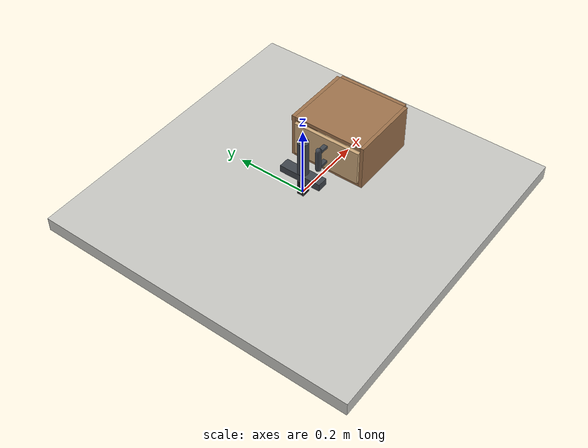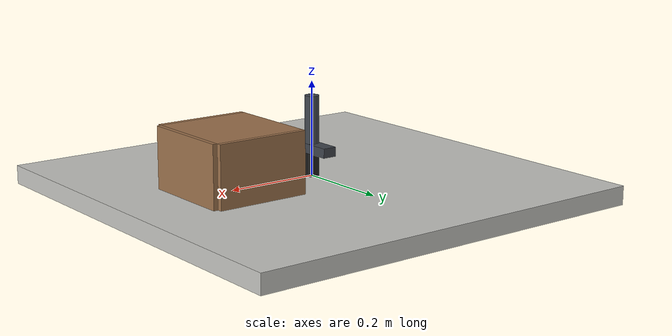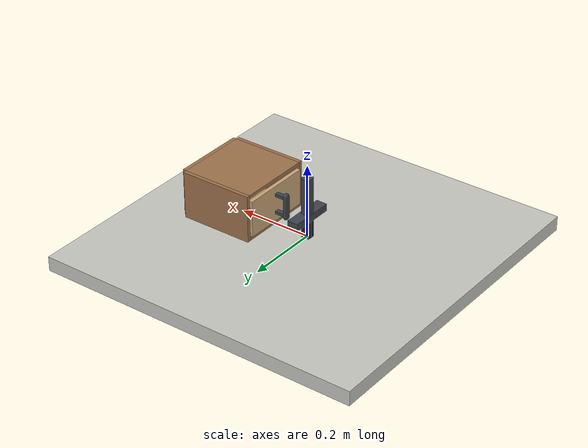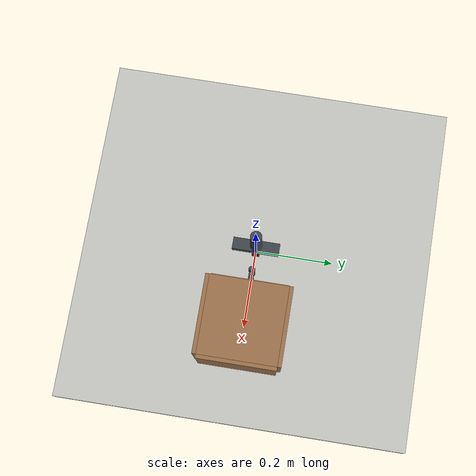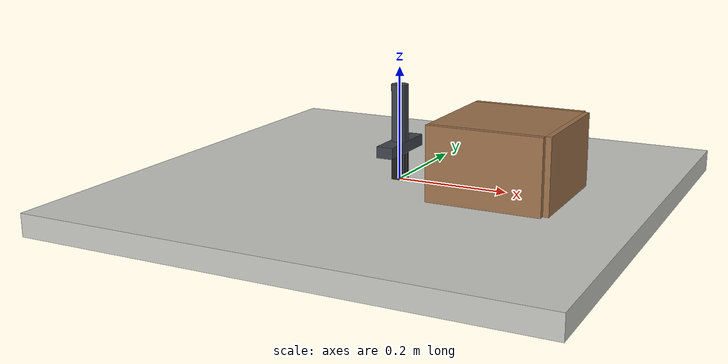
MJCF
<!--
  Drawer: pull a drawer out of a fixed cabinet by its vertical handle.
  The cabinet opens toward -x; the drawer joint measures how far it is open.
-->
<mujoco model="drawer">
  <include file="common.xml"/>
  <asset>
    <material name="wood" rgba="0.62 0.45 0.30 1"/>
    <material name="drawer" rgba="0.80 0.66 0.48 1"/>
  </asset>
  <worldbody>
    <body name="cabinet" pos="0.2 0 0">
      <geom name="cab_bottom" type="box" size="0.1 0.1 0.005" pos="0 0 0.005" material="wood"/>
      <geom name="cab_top" type="box" size="0.1 0.1 0.005" pos="0 0 0.125" material="wood"/>
      <geom name="cab_left" type="box" size="0.1 0.005 0.065" pos="0 0.105 0.065" material="wood"/>
      <geom name="cab_right" type="box" size="0.1 0.005 0.065" pos="0 -0.105 0.065" material="wood"/>
      <geom name="cab_back" type="box" size="0.005 0.1 0.065" pos="0.105 0 0.065" material="wood"/>
      <body name="drawer" pos="0 0 0.012">
        <joint name="drawer" type="slide" axis="-1 0 0" range="0 0.18" damping="2" frictionloss="0.3"/>
        <geom name="drawer_bottom" type="box" size="0.095 0.095 0.003" pos="0 0 0.003" material="drawer"
              mass="0.2"/>
        <geom name="drawer_front" type="box" size="0.005 0.098 0.05" pos="-0.1 0 0.05" material="drawer"
              mass="0.1"/>
        <geom name="drawer_back" type="box" size="0.004 0.09 0.03" pos="0.09 0 0.03" material="drawer"
              mass="0.05"/>
        <geom name="standoff_top" type="box" size="0.02 0.006 0.004" pos="-0.12 0 0.075"
              material="gripper" mass="0.01"/>
        <geom name="standoff_bottom" type="box" size="0.02 0.006 0.004" pos="-0.12 0 0.025"
              material="gripper" mass="0.01"/>
        <geom name="handle" type="capsule" size="0.008 0.03" pos="-0.135 0 0.05" material="gripper"
              mass="0.02"/>
        <site name="handle" pos="-0.135 0 0.05" size="0.005" rgba="1 1 0 0"/>
      </body>
    </body>
  </worldbody>
</mujoco>

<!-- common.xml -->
<mujoco>
  <compiler angle="radian" autolimits="true"/>
  <option timestep="0.002" cone="elliptic" impratio="10" integrator="implicitfast"/>
  <size memory="8M"/>

  <visual>
    <global offwidth="640" offheight="480"/>
    <headlight ambient="0.35 0.35 0.35" diffuse="0.5 0.5 0.5" specular="0.1 0.1 0.1"/>
    <quality shadowsize="2048"/>
  </visual>

  <asset>
    <texture name="grid" type="2d" builtin="checker" rgb1="0.82 0.82 0.80" rgb2="0.74 0.74 0.72"
             width="256" height="256"/>
    <texture name="sky" type="skybox" builtin="gradient" rgb1="0.55 0.62 0.72" rgb2="0.12 0.14 0.18"
             width="256" height="256"/>
    <material name="table" texture="grid" texrepeat="6 6" reflectance="0.05"/>
    <material name="gripper" rgba="0.25 0.27 0.30 1"/>
    <material name="pad" rgba="0.12 0.12 0.12 1"/>
    <material name="goal" rgba="0.15 0.75 0.25 0.35"/>
  </asset>

  <default>
    <geom friction="1.0 0.005 0.0001" solref="0.01 1" solimp="0.95 0.99 0.001"/>
    <default class="visual">
      <geom contype="0" conaffinity="0" group="1"/>
    </default>
  </default>

  <worldbody>
    <light name="key" pos="0.4 -0.4 1.2" dir="-0.3 0.3 -1" diffuse="0.6 0.6 0.6" castshadow="true"/>
    <light name="fill" pos="-0.5 0.3 1.0" dir="0.4 -0.2 -1" diffuse="0.25 0.25 0.25" castshadow="false"/>
    <geom name="table" type="box" size="0.45 0.45 0.02" pos="0 0 -0.02" material="table"/>
    <camera name="front" pos="0.0 -0.62 0.5" xyaxes="1 0 0 0 0.587 0.81" fovy="42"/>
    <camera name="top" pos="0 0 1.1" xyaxes="1 0 0 0 1 0" fovy="45"/>

    <body name="ee" pos="0 0 0" gravcomp="1">
      <joint name="ee_x" type="slide" axis="1 0 0" range="-0.35 0.35" damping="40"/>
      <joint name="ee_y" type="slide" axis="0 1 0" range="-0.35 0.35" damping="40"/>
      <joint name="ee_z" type="slide" axis="0 0 1" range="0.0 0.45" damping="40"/>
      <inertial pos="0 0 0.06" mass="0.4" diaginertia="0.001 0.001 0.001"/>
      <geom name="palm" type="box" size="0.015 0.06 0.01" pos="0 0 0.06" material="gripper"/>
      <geom name="wrist" type="cylinder" size="0.015 0.05" pos="0 0 0.12" material="gripper"
            class="visual"/>
      <site name="grip" pos="0 0 0" size="0.006" rgba="1 0.3 0.1 0.6"/>
      <body name="finger_l" pos="0 0 0" gravcomp="1">
        <joint name="finger_l" type="slide" axis="0 1 0" range="0 0.045" damping="5"/>
        <inertial pos="0 0.005 0.02" mass="0.05" diaginertia="1e-5 1e-5 1e-5"/>
        <geom name="finger_l" type="box" size="0.012 0.005 0.04" pos="0 0.005 0.02"
              material="pad" friction="1.5 0.01 0.001"/>
      </body>
      <body name="finger_r" pos="0 0 0" gravcomp="1">
        <joint name="finger_r" type="slide" axis="0 -1 0" range="0 0.045" damping="5"/>
        <inertial pos="0 -0.005 0.02" mass="0.05" diaginertia="1e-5 1e-5 1e-5"/>
        <geom name="finger_r" type="box" size="0.012 0.005 0.04" pos="0 -0.005 0.02"
              material="pad" friction="1.5 0.01 0.001"/>
      </body>
    </body>
  </worldbody>

  <contact>
    <exclude body1="finger_l" body2="finger_r"/>
  </contact>

  <actuator>
    <position name="ee_x" joint="ee_x" kp="600" ctrlrange="-0.35 0.35" forcerange="-40 40"/>
    <position name="ee_y" joint="ee_y" kp="600" ctrlrange="-0.35 0.35" forcerange="-40 40"/>
    <position name="ee_z" joint="ee_z" kp="600" ctrlrange="0.0 0.45" forcerange="-40 40"/>
    <position name="finger_l" joint="finger_l" kp="300" ctrlrange="0 0.045" forcerange="-15 15"/>
    <position name="finger_r" joint="finger_r" kp="300" ctrlrange="0 0.045" forcerange="-15 15"/>
  </actuator>
</mujoco>
